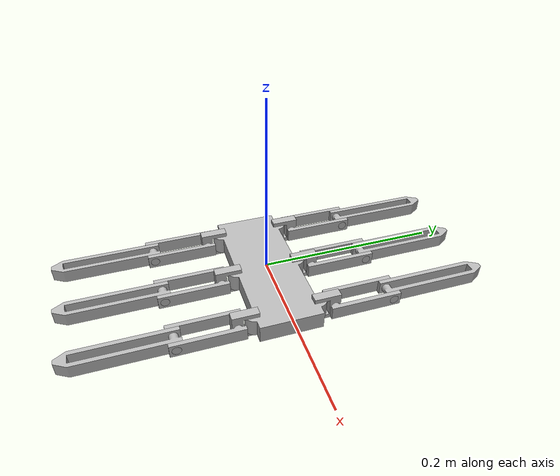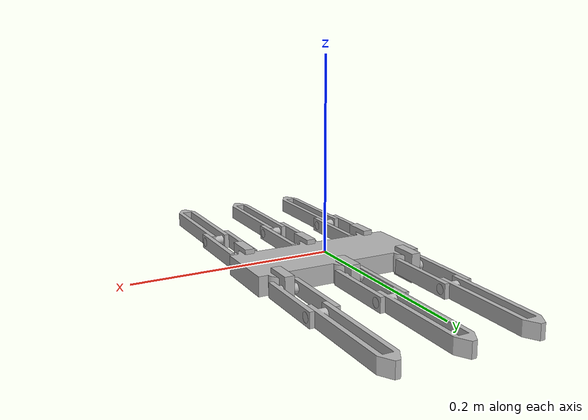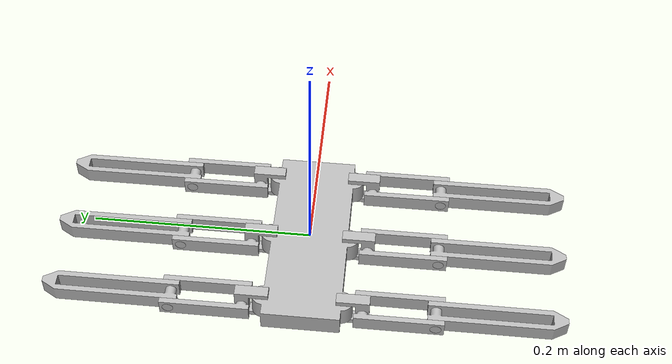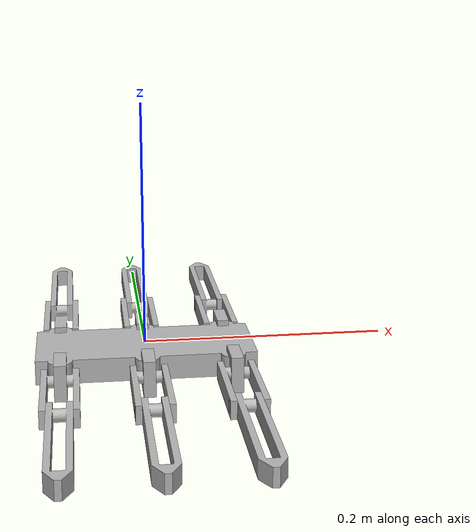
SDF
<sdf version='1.7'>
  <model name='onshape'>
    <link name='body'>
      <inertial>
        <pose>-0 -0 -0.01 0 -0 0</pose>
        <mass>0.275019</mass>
        <inertia>
          <ixx>0.000135889</ixx>
          <ixy>-1.94789e-18</ixy>
          <ixz>-1.32177e-18</ixz>
          <iyy>0.00075777</iyy>
          <iyz>-1.40515e-18</iyz>
          <izz>0.000875325</izz>
        </inertia>
      </inertial>
      <collision name='body_collision'>
        <pose>-0 0 -0.02 -0 -0 -1.5708</pose>
        <geometry>
          <mesh>
            <scale>1 1 1</scale>
            <uri>package://models/robot/meshes/body.stl</uri>
          </mesh>
        </geometry>
      </collision>
      <visual name='body_visual'>
        <pose>-0 0 -0.02 -0 -0 -1.5708</pose>
        <geometry>
          <mesh>
            <scale>1 1 1</scale>
            <uri>package://models/robot/meshes/body.stl</uri>
          </mesh>
        </geometry>
      </visual>
    </link>
    <joint name='leg1_coxa' type='revolute'>
      <pose relative_to='body'>-0.07 -0.035 -0.01 -3.14159 -0 1.5708</pose>
      <parent>body</parent>
      <child>coxa</child>
      <axis>
        <xyz>0 0 1</xyz>
        <limit>
          <lower>-0.698132</lower>
          <upper>0.698132</upper>
          <effort>1</effort>
          <velocity>20</velocity>
        </limit>
        <dynamics>
          <spring_reference>0</spring_reference>
          <spring_stiffness>0</spring_stiffness>
        </dynamics>
      </axis>
    </joint>
    <link name='coxa'>
      <pose relative_to='leg1_coxa'>0 0 0 0 -0 0</pose>
      <inertial>
        <pose>-0.009888 0 -0 0 -0 0</pose>
        <mass>0.00661224</mass>
        <inertia>
          <ixx>6.88945e-07</ixx>
          <ixy>1.36618e-38</ixy>
          <ixz>1.0027e-39</ixz>
          <iyy>1.21666e-06</iyy>
          <iyz>-3.78086e-37</iyz>
          <izz>6.31033e-07</izz>
        </inertia>
      </inertial>
      <collision name='coxa_collision'>
        <pose>-0 0 0.01 3.14159 0 -0</pose>
        <geometry>
          <mesh>
            <scale>1 1 1</scale>
            <uri>package://models/robot/meshes/coxa.stl</uri>
          </mesh>
        </geometry>
      </collision>
      <visual name='coxa_visual'>
        <pose>-0 0 0.01 3.14159 0 -0</pose>
        <geometry>
          <mesh>
            <scale>1 1 1</scale>
            <uri>package://models/robot/meshes/coxa.stl</uri>
          </mesh>
        </geometry>
      </visual>
    </link>
    <joint name='leg1_femur' type='revolute'>
      <pose relative_to='coxa'>-0.01875 0 0 -1.5708 0 0</pose>
      <parent>coxa</parent>
      <child>femur</child>
      <axis>
        <xyz>0 0 1</xyz>
        <limit>
          <lower>-1.5708</lower>
          <upper>1.5708</upper>
          <effort>1</effort>
          <velocity>20</velocity>
        </limit>
        <dynamics>
          <spring_reference>0</spring_reference>
          <spring_stiffness>0</spring_stiffness>
        </dynamics>
      </axis>
    </joint>
    <link name='femur'>
      <pose relative_to='leg1_femur'>0 0 0 0 -0 0</pose>
      <inertial>
        <pose>-0.026511 0 -0 0 -0 0</pose>
        <mass>0.0134502</mass>
        <inertia>
          <ixx>2.16493e-06</ixx>
          <ixy>9.99477e-36</ixy>
          <ixz>-6.83902e-37</ixz>
          <iyy>9.05125e-06</iyy>
          <iyz>-1.63467e-36</iyz>
          <izz>7.37005e-06</izz>
        </inertia>
      </inertial>
      <collision name='femur_collision'>
        <pose>0 0 0.01 1.5708 0 0</pose>
        <geometry>
          <mesh>
            <scale>1 1 1</scale>
            <uri>package://models/robot/meshes/femur.stl</uri>
          </mesh>
        </geometry>
      </collision>
      <visual name='femur_visual'>
        <pose>0 0 0.01 1.5708 0 0</pose>
        <geometry>
          <mesh>
            <scale>1 1 1</scale>
            <uri>package://models/robot/meshes/femur.stl</uri>
          </mesh>
        </geometry>
      </visual>
    </link>
    <joint name='leg1_tibia' type='revolute'>
      <pose relative_to='femur'>-0.065 -0 -0.015 3.14159 0 -0</pose>
      <parent>femur</parent>
      <child>tibia</child>
      <axis>
        <xyz>0 0 1</xyz>
        <limit>
          <lower>-2.61799</lower>
          <upper>2.61799</upper>
          <effort>1</effort>
          <velocity>20</velocity>
        </limit>
        <dynamics>
          <spring_reference>0</spring_reference>
          <spring_stiffness>0</spring_stiffness>
        </dynamics>
      </axis>
    </joint>
    <link name='tibia'>
      <pose relative_to='leg1_tibia'>0 0 0 0 -0 0</pose>
      <inertial>
        <pose>-0.053082 -0 -0.015 0 -0 0</pose>
        <mass>0.0224269</mass>
        <inertia>
          <ixx>1.73516e-06</ixx>
          <ixy>6.08347e-36</ixy>
          <ixz>7.0079e-38</ixz>
          <iyy>3.40424e-05</iyy>
          <iyz>3.54034e-39</iyz>
          <izz>3.31069e-05</izz>
        </inertia>
      </inertial>
      <collision name='tibia_collision'>
        <pose>0 0 -0.015 -1.5708 0 -0</pose>
        <geometry>
          <mesh>
            <scale>1 1 1</scale>
            <uri>package://models/robot/meshes/tibia.stl</uri>
          </mesh>
        </geometry>
      </collision>
      <visual name='tibia_visual'>
        <pose>0 0 -0.015 -1.5708 0 -0</pose>
        <geometry>
          <mesh>
            <scale>1 1 1</scale>
            <uri>package://models/robot/meshes/tibia.stl</uri>
          </mesh>
        </geometry>
      </visual>
    </link>
    <joint name='leg2_coxa' type='revolute'>
      <pose relative_to='body'>0 -0.035 -0.01 3.14159 -0 1.5708</pose>
      <parent>body</parent>
      <child>coxa_2</child>
      <axis>
        <xyz>0 0 1</xyz>
        <limit>
          <lower>-0.698132</lower>
          <upper>0.698132</upper>
          <effort>1</effort>
          <velocity>20</velocity>
        </limit>
        <dynamics>
          <spring_reference>0</spring_reference>
          <spring_stiffness>0</spring_stiffness>
        </dynamics>
      </axis>
    </joint>
    <link name='coxa_2'>
      <pose relative_to='leg2_coxa'>0 0 0 0 -0 0</pose>
      <inertial>
        <pose>-0.009888 0 -0 0 -0 0</pose>
        <mass>0.00661224</mass>
        <inertia>
          <ixx>6.88945e-07</ixx>
          <ixy>-6.31328e-38</ixy>
          <ixz>-1.03262e-37</ixz>
          <iyy>1.21666e-06</iyy>
          <iyz>-5.07016e-37</iyz>
          <izz>6.31033e-07</izz>
        </inertia>
      </inertial>
      <collision name='coxa_2_collision'>
        <pose>0 0 0.01 3.14159 0 0</pose>
        <geometry>
          <mesh>
            <scale>1 1 1</scale>
            <uri>package://models/robot/meshes/coxa.stl</uri>
          </mesh>
        </geometry>
      </collision>
      <visual name='coxa_2_visual'>
        <pose>0 0 0.01 3.14159 0 0</pose>
        <geometry>
          <mesh>
            <scale>1 1 1</scale>
            <uri>package://models/robot/meshes/coxa.stl</uri>
          </mesh>
        </geometry>
      </visual>
    </link>
    <joint name='leg2_femur' type='revolute'>
      <pose relative_to='coxa_2'>-0.01875 0 0 -1.5708 0 0</pose>
      <parent>coxa_2</parent>
      <child>femur_2</child>
      <axis>
        <xyz>0 0 1</xyz>
        <limit>
          <lower>-1.5708</lower>
          <upper>1.5708</upper>
          <effort>1</effort>
          <velocity>20</velocity>
        </limit>
        <dynamics>
          <spring_reference>0</spring_reference>
          <spring_stiffness>0</spring_stiffness>
        </dynamics>
      </axis>
    </joint>
    <link name='femur_2'>
      <pose relative_to='leg2_femur'>0 0 0 0 -0 0</pose>
      <inertial>
        <pose>-0.026511 0 -0 0 -0 0</pose>
        <mass>0.0134502</mass>
        <inertia>
          <ixx>2.16493e-06</ixx>
          <ixy>8.83431e-36</ixy>
          <ixz>-1.30397e-36</ixz>
          <iyy>9.05125e-06</iyy>
          <iyz>2.16668e-36</iyz>
          <izz>7.37005e-06</izz>
        </inertia>
      </inertial>
      <collision name='femur_2_collision'>
        <pose>0 0 0.01 1.5708 0 -0</pose>
        <geometry>
          <mesh>
            <scale>1 1 1</scale>
            <uri>package://models/robot/meshes/femur.stl</uri>
          </mesh>
        </geometry>
      </collision>
      <visual name='femur_2_visual'>
        <pose>0 0 0.01 1.5708 0 -0</pose>
        <geometry>
          <mesh>
            <scale>1 1 1</scale>
            <uri>package://models/robot/meshes/femur.stl</uri>
          </mesh>
        </geometry>
      </visual>
    </link>
    <joint name='leg2_tibia' type='revolute'>
      <pose relative_to='femur_2'>-0.065 -0 -0.015 3.14159 0 0</pose>
      <parent>femur_2</parent>
      <child>tibia_2</child>
      <axis>
        <xyz>0 0 1</xyz>
        <limit>
          <lower>-2.61799</lower>
          <upper>2.61799</upper>
          <effort>1</effort>
          <velocity>20</velocity>
        </limit>
        <dynamics>
          <spring_reference>0</spring_reference>
          <spring_stiffness>0</spring_stiffness>
        </dynamics>
      </axis>
    </joint>
    <link name='tibia_2'>
      <pose relative_to='leg2_tibia'>0 0 0 0 -0 0</pose>
      <inertial>
        <pose>-0.053082 -0 -0.015 0 -0 0</pose>
        <mass>0.0224269</mass>
        <inertia>
          <ixx>1.73516e-06</ixx>
          <ixy>-2.01166e-35</ixy>
          <ixz>-5.97056e-37</ixz>
          <iyy>3.40424e-05</iyy>
          <iyz>-3.61737e-36</iyz>
          <izz>3.31069e-05</izz>
        </inertia>
      </inertial>
      <collision name='tibia_2_collision'>
        <pose>0 0 -0.015 -1.5708 0 0</pose>
        <geometry>
          <mesh>
            <scale>1 1 1</scale>
            <uri>package://models/robot/meshes/tibia.stl</uri>
          </mesh>
        </geometry>
      </collision>
      <visual name='tibia_2_visual'>
        <pose>0 0 -0.015 -1.5708 0 0</pose>
        <geometry>
          <mesh>
            <scale>1 1 1</scale>
            <uri>package://models/robot/meshes/tibia.stl</uri>
          </mesh>
        </geometry>
      </visual>
    </link>
    <joint name='leg3_coxa' type='revolute'>
      <pose relative_to='body'>0.07 -0.035 -0.01 3.14159 -0 1.5708</pose>
      <parent>body</parent>
      <child>coxa_3</child>
      <axis>
        <xyz>0 0 1</xyz>
        <limit>
          <lower>-0.698132</lower>
          <upper>0.698132</upper>
          <effort>1</effort>
          <velocity>20</velocity>
        </limit>
        <dynamics>
          <spring_reference>0</spring_reference>
          <spring_stiffness>0</spring_stiffness>
        </dynamics>
      </axis>
    </joint>
    <link name='coxa_3'>
      <pose relative_to='leg3_coxa'>0 0 0 0 -0 0</pose>
      <inertial>
        <pose>-0.009888 0 -0 0 -0 0</pose>
        <mass>0.00661224</mass>
        <inertia>
          <ixx>6.88945e-07</ixx>
          <ixy>-8.63336e-37</ixy>
          <ixz>0</ixz>
          <iyy>1.21666e-06</iyy>
          <iyz>0</iyz>
          <izz>6.31033e-07</izz>
        </inertia>
      </inertial>
      <collision name='coxa_3_collision'>
        <pose>0 0 0.01 3.14159 -0 -0</pose>
        <geometry>
          <mesh>
            <scale>1 1 1</scale>
            <uri>package://models/robot/meshes/coxa.stl</uri>
          </mesh>
        </geometry>
      </collision>
      <visual name='coxa_3_visual'>
        <pose>0 0 0.01 3.14159 -0 -0</pose>
        <geometry>
          <mesh>
            <scale>1 1 1</scale>
            <uri>package://models/robot/meshes/coxa.stl</uri>
          </mesh>
        </geometry>
      </visual>
    </link>
    <joint name='leg3_femur' type='revolute'>
      <pose relative_to='coxa_3'>-0.01875 0 0 -1.5708 -0 0</pose>
      <parent>coxa_3</parent>
      <child>femur_3</child>
      <axis>
        <xyz>0 0 1</xyz>
        <limit>
          <lower>-1.5708</lower>
          <upper>1.5708</upper>
          <effort>1</effort>
          <velocity>20</velocity>
        </limit>
        <dynamics>
          <spring_reference>0</spring_reference>
          <spring_stiffness>0</spring_stiffness>
        </dynamics>
      </axis>
    </joint>
    <link name='femur_3'>
      <pose relative_to='leg3_femur'>0 0 0 0 -0 0</pose>
      <inertial>
        <pose>-0.026511 0 -0 0 -0 0</pose>
        <mass>0.0134502</mass>
        <inertia>
          <ixx>2.16493e-06</ixx>
          <ixy>-2.74598e-36</ixy>
          <ixz>-3.63034e-36</ixz>
          <iyy>9.05125e-06</iyy>
          <iyz>1.87796e-38</iyz>
          <izz>7.37005e-06</izz>
        </inertia>
      </inertial>
      <collision name='femur_3_collision'>
        <pose>0 0 0.01 1.5708 -0 -0</pose>
        <geometry>
          <mesh>
            <scale>1 1 1</scale>
            <uri>package://models/robot/meshes/femur.stl</uri>
          </mesh>
        </geometry>
      </collision>
      <visual name='femur_3_visual'>
        <pose>0 0 0.01 1.5708 -0 -0</pose>
        <geometry>
          <mesh>
            <scale>1 1 1</scale>
            <uri>package://models/robot/meshes/femur.stl</uri>
          </mesh>
        </geometry>
      </visual>
    </link>
    <joint name='leg3_tibia' type='revolute'>
      <pose relative_to='femur_3'>-0.065 0 -0.015 -3.14159 0 0</pose>
      <parent>femur_3</parent>
      <child>tibia_3</child>
      <axis>
        <xyz>0 0 1</xyz>
        <limit>
          <lower>-2.61799</lower>
          <upper>2.61799</upper>
          <effort>1</effort>
          <velocity>20</velocity>
        </limit>
        <dynamics>
          <spring_reference>0</spring_reference>
          <spring_stiffness>0</spring_stiffness>
        </dynamics>
      </axis>
    </joint>
    <link name='tibia_3'>
      <pose relative_to='leg3_tibia'>0 0 0 0 -0 0</pose>
      <inertial>
        <pose>-0.053082 0 -0.015 0 -0 0</pose>
        <mass>0.0224269</mass>
        <inertia>
          <ixx>1.73516e-06</ixx>
          <ixy>-6.65003e-36</ixy>
          <ixz>1.13017e-35</ixz>
          <iyy>3.40424e-05</iyy>
          <iyz>-5.28622e-35</iyz>
          <izz>3.31069e-05</izz>
        </inertia>
      </inertial>
      <collision name='tibia_3_collision'>
        <pose>0 0 -0.015 -1.5708 0 0</pose>
        <geometry>
          <mesh>
            <scale>1 1 1</scale>
            <uri>package://models/robot/meshes/tibia.stl</uri>
          </mesh>
        </geometry>
      </collision>
      <visual name='tibia_3_visual'>
        <pose>0 0 -0.015 -1.5708 0 0</pose>
        <geometry>
          <mesh>
            <scale>1 1 1</scale>
            <uri>package://models/robot/meshes/tibia.stl</uri>
          </mesh>
        </geometry>
      </visual>
    </link>
    <joint name='leg4_coxa' type='revolute'>
      <pose relative_to='body'>0.07 0.035 -0.01 -3.14159 0 -1.5708</pose>
      <parent>body</parent>
      <child>coxa_4</child>
      <axis>
        <xyz>0 0 1</xyz>
        <limit>
          <lower>-0.698132</lower>
          <upper>0.698132</upper>
          <effort>1</effort>
          <velocity>20</velocity>
        </limit>
        <dynamics>
          <spring_reference>0</spring_reference>
          <spring_stiffness>0</spring_stiffness>
        </dynamics>
      </axis>
    </joint>
    <link name='coxa_4'>
      <pose relative_to='leg4_coxa'>0 0 0 0 -0 0</pose>
      <inertial>
        <pose>-0.009888 0 -0 0 -0 0</pose>
        <mass>0.00661224</mass>
        <inertia>
          <ixx>6.88945e-07</ixx>
          <ixy>5.61159e-39</ixy>
          <ixz>4.18252e-38</ixz>
          <iyy>1.21666e-06</iyy>
          <iyz>7.79585e-38</iyz>
          <izz>6.31033e-07</izz>
        </inertia>
      </inertial>
      <collision name='coxa_4_collision'>
        <pose>0 0 0.01 -3.14159 0 -0</pose>
        <geometry>
          <mesh>
            <scale>1 1 1</scale>
            <uri>package://models/robot/meshes/coxa.stl</uri>
          </mesh>
        </geometry>
      </collision>
      <visual name='coxa_4_visual'>
        <pose>0 0 0.01 -3.14159 0 -0</pose>
        <geometry>
          <mesh>
            <scale>1 1 1</scale>
            <uri>package://models/robot/meshes/coxa.stl</uri>
          </mesh>
        </geometry>
      </visual>
    </link>
    <joint name='leg4_femur' type='revolute'>
      <pose relative_to='coxa_4'>-0.01875 0 0 -1.5708 0 -0</pose>
      <parent>coxa_4</parent>
      <child>femur_4</child>
      <axis>
        <xyz>0 0 1</xyz>
        <limit>
          <lower>-1.5708</lower>
          <upper>1.5708</upper>
          <effort>1</effort>
          <velocity>20</velocity>
        </limit>
        <dynamics>
          <spring_reference>0</spring_reference>
          <spring_stiffness>0</spring_stiffness>
        </dynamics>
      </axis>
    </joint>
    <link name='femur_4'>
      <pose relative_to='leg4_femur'>0 0 0 0 -0 0</pose>
      <inertial>
        <pose>-0.026511 0 -0 0 -0 0</pose>
        <mass>0.0134502</mass>
        <inertia>
          <ixx>2.16493e-06</ixx>
          <ixy>-5.53e-37</ixy>
          <ixz>2.70767e-36</ixz>
          <iyy>9.05125e-06</iyy>
          <iyz>4.60247e-37</iyz>
          <izz>7.37005e-06</izz>
        </inertia>
      </inertial>
      <collision name='femur_4_collision'>
        <pose>0 0 0.01 1.5708 -0 -0</pose>
        <geometry>
          <mesh>
            <scale>1 1 1</scale>
            <uri>package://models/robot/meshes/femur.stl</uri>
          </mesh>
        </geometry>
      </collision>
      <visual name='femur_4_visual'>
        <pose>0 0 0.01 1.5708 -0 -0</pose>
        <geometry>
          <mesh>
            <scale>1 1 1</scale>
            <uri>package://models/robot/meshes/femur.stl</uri>
          </mesh>
        </geometry>
      </visual>
    </link>
    <joint name='leg4_tibia' type='revolute'>
      <pose relative_to='femur_4'>-0.065 0 -0.015 3.14159 -0 -0</pose>
      <parent>femur_4</parent>
      <child>tibia_4</child>
      <axis>
        <xyz>0 0 1</xyz>
        <limit>
          <lower>-2.61799</lower>
          <upper>2.61799</upper>
          <effort>1</effort>
          <velocity>20</velocity>
        </limit>
        <dynamics>
          <spring_reference>0</spring_reference>
          <spring_stiffness>0</spring_stiffness>
        </dynamics>
      </axis>
    </joint>
    <link name='tibia_4'>
      <pose relative_to='leg4_tibia'>0 0 0 0 -0 0</pose>
      <inertial>
        <pose>-0.053082 -0 -0.015 0 -0 0</pose>
        <mass>0.0224269</mass>
        <inertia>
          <ixx>1.73516e-06</ixx>
          <ixy>4.58307e-37</ixy>
          <ixz>4.98314e-36</ixz>
          <iyy>3.40424e-05</iyy>
          <iyz>3.75234e-36</iyz>
          <izz>3.31069e-05</izz>
        </inertia>
      </inertial>
      <collision name='tibia_4_collision'>
        <pose>0 -0 -0.015 -1.5708 -0 -0</pose>
        <geometry>
          <mesh>
            <scale>1 1 1</scale>
            <uri>package://models/robot/meshes/tibia.stl</uri>
          </mesh>
        </geometry>
      </collision>
      <visual name='tibia_4_visual'>
        <pose>0 -0 -0.015 -1.5708 -0 -0</pose>
        <geometry>
          <mesh>
            <scale>1 1 1</scale>
            <uri>package://models/robot/meshes/tibia.stl</uri>
          </mesh>
        </geometry>
      </visual>
    </link>
    <joint name='leg5_coxa' type='revolute'>
      <pose relative_to='body'>-0 0.035 -0.01 3.14159 -0 -1.5708</pose>
      <parent>body</parent>
      <child>coxa_5</child>
      <axis>
        <xyz>0 0 1</xyz>
        <limit>
          <lower>-0.698132</lower>
          <upper>0.698132</upper>
          <effort>1</effort>
          <velocity>20</velocity>
        </limit>
        <dynamics>
          <spring_reference>0</spring_reference>
          <spring_stiffness>0</spring_stiffness>
        </dynamics>
      </axis>
    </joint>
    <link name='coxa_5'>
      <pose relative_to='leg5_coxa'>0 0 0 0 -0 0</pose>
      <inertial>
        <pose>-0.009888 0 -0 0 -0 0</pose>
        <mass>0.00661224</mass>
        <inertia>
          <ixx>6.88945e-07</ixx>
          <ixy>-2.8165e-38</ixy>
          <ixz>2.81906e-38</ixz>
          <iyy>1.21666e-06</iyy>
          <iyz>-8.2387e-39</iyz>
          <izz>6.31033e-07</izz>
        </inertia>
      </inertial>
      <collision name='coxa_5_collision'>
        <pose>0 0 0.01 3.14159 -0 -0</pose>
        <geometry>
          <mesh>
            <scale>1 1 1</scale>
            <uri>package://models/robot/meshes/coxa.stl</uri>
          </mesh>
        </geometry>
      </collision>
      <visual name='coxa_5_visual'>
        <pose>0 0 0.01 3.14159 -0 -0</pose>
        <geometry>
          <mesh>
            <scale>1 1 1</scale>
            <uri>package://models/robot/meshes/coxa.stl</uri>
          </mesh>
        </geometry>
      </visual>
    </link>
    <joint name='leg5_femur' type='revolute'>
      <pose relative_to='coxa_5'>-0.01875 -0 0 -1.5708 0 -0</pose>
      <parent>coxa_5</parent>
      <child>femur_5</child>
      <axis>
        <xyz>0 0 1</xyz>
        <limit>
          <lower>-1.5708</lower>
          <upper>1.5708</upper>
          <effort>1</effort>
          <velocity>20</velocity>
        </limit>
        <dynamics>
          <spring_reference>0</spring_reference>
          <spring_stiffness>0</spring_stiffness>
        </dynamics>
      </axis>
    </joint>
    <link name='femur_5'>
      <pose relative_to='leg5_femur'>0 0 0 0 -0 0</pose>
      <inertial>
        <pose>-0.026511 0 -0 0 -0 0</pose>
        <mass>0.0134502</mass>
        <inertia>
          <ixx>2.16493e-06</ixx>
          <ixy>-1.51026e-36</ixy>
          <ixz>-2.10708e-37</ixz>
          <iyy>9.05125e-06</iyy>
          <iyz>-2.6767e-38</iyz>
          <izz>7.37005e-06</izz>
        </inertia>
      </inertial>
      <collision name='femur_5_collision'>
        <pose>0 0 0.01 1.5708 0 0</pose>
        <geometry>
          <mesh>
            <scale>1 1 1</scale>
            <uri>package://models/robot/meshes/femur.stl</uri>
          </mesh>
        </geometry>
      </collision>
      <visual name='femur_5_visual'>
        <pose>0 0 0.01 1.5708 0 0</pose>
        <geometry>
          <mesh>
            <scale>1 1 1</scale>
            <uri>package://models/robot/meshes/femur.stl</uri>
          </mesh>
        </geometry>
      </visual>
    </link>
    <joint name='leg5_tibia' type='revolute'>
      <pose relative_to='femur_5'>-0.065 -0 -0.015 3.14159 -0 -0</pose>
      <parent>femur_5</parent>
      <child>tibia_5</child>
      <axis>
        <xyz>0 0 1</xyz>
        <limit>
          <lower>-2.61799</lower>
          <upper>2.61799</upper>
          <effort>1</effort>
          <velocity>20</velocity>
        </limit>
        <dynamics>
          <spring_reference>0</spring_reference>
          <spring_stiffness>0</spring_stiffness>
        </dynamics>
      </axis>
    </joint>
    <link name='tibia_5'>
      <pose relative_to='leg5_tibia'>0 0 0 0 -0 0</pose>
      <inertial>
        <pose>-0.053082 -0 -0.015 0 -0 0</pose>
        <mass>0.0224269</mass>
        <inertia>
          <ixx>1.73516e-06</ixx>
          <ixy>1.73944e-34</ixy>
          <ixz>1.69405e-37</ixz>
          <iyy>3.40424e-05</iyy>
          <iyz>-1.48939e-38</iyz>
          <izz>3.31069e-05</izz>
        </inertia>
      </inertial>
      <collision name='tibia_5_collision'>
        <pose>0 0 -0.015 -1.5708 -0 -0</pose>
        <geometry>
          <mesh>
            <scale>1 1 1</scale>
            <uri>package://models/robot/meshes/tibia.stl</uri>
          </mesh>
        </geometry>
      </collision>
      <visual name='tibia_5_visual'>
        <pose>0 0 -0.015 -1.5708 -0 -0</pose>
        <geometry>
          <mesh>
            <scale>1 1 1</scale>
            <uri>package://models/robot/meshes/tibia.stl</uri>
          </mesh>
        </geometry>
      </visual>
    </link>
    <joint name='leg6_coxa' type='revolute'>
      <pose relative_to='body'>-0.07 0.035 -0.01 3.14159 -0 -1.5708</pose>
      <parent>body</parent>
      <child>coxa_6</child>
      <axis>
        <xyz>0 0 1</xyz>
        <limit>
          <lower>-0.698132</lower>
          <upper>0.698132</upper>
          <effort>1</effort>
          <velocity>20</velocity>
        </limit>
        <dynamics>
          <spring_reference>0</spring_reference>
          <spring_stiffness>0</spring_stiffness>
        </dynamics>
      </axis>
    </joint>
    <link name='coxa_6'>
      <pose relative_to='leg6_coxa'>0 0 0 0 -0 0</pose>
      <inertial>
        <pose>-0.009888 0 -0 0 -0 0</pose>
        <mass>0.00661224</mass>
        <inertia>
          <ixx>6.88945e-07</ixx>
          <ixy>-1.82957e-37</ixy>
          <ixz>-1.61556e-37</ixz>
          <iyy>1.21666e-06</iyy>
          <iyz>-3.82516e-37</iyz>
          <izz>6.31033e-07</izz>
        </inertia>
      </inertial>
      <collision name='coxa_6_collision'>
        <pose>0 0 0.01 3.14159 0 -0</pose>
        <geometry>
          <mesh>
            <scale>1 1 1</scale>
            <uri>package://models/robot/meshes/coxa.stl</uri>
          </mesh>
        </geometry>
      </collision>
      <visual name='coxa_6_visual'>
        <pose>0 0 0.01 3.14159 0 -0</pose>
        <geometry>
          <mesh>
            <scale>1 1 1</scale>
            <uri>package://models/robot/meshes/coxa.stl</uri>
          </mesh>
        </geometry>
      </visual>
    </link>
    <joint name='leg6_femur' type='revolute'>
      <pose relative_to='coxa_6'>-0.01875 0 0 -1.5708 -0 0</pose>
      <parent>coxa_6</parent>
      <child>femur_6</child>
      <axis>
        <xyz>0 0 1</xyz>
        <limit>
          <lower>-1.5708</lower>
          <upper>1.5708</upper>
          <effort>1</effort>
          <velocity>20</velocity>
        </limit>
        <dynamics>
          <spring_reference>0</spring_reference>
          <spring_stiffness>0</spring_stiffness>
        </dynamics>
      </axis>
    </joint>
    <link name='femur_6'>
      <pose relative_to='leg6_femur'>0 0 0 0 -0 0</pose>
      <inertial>
        <pose>-0.026511 0 -0 0 -0 0</pose>
        <mass>0.0134502</mass>
        <inertia>
          <ixx>2.16493e-06</ixx>
          <ixy>1.11348e-35</ixy>
          <ixz>-4.53793e-36</ixz>
          <iyy>9.05125e-06</iyy>
          <iyz>-3.03564e-36</iyz>
          <izz>7.37005e-06</izz>
        </inertia>
      </inertial>
      <collision name='femur_6_collision'>
        <pose>0 0 0.01 1.5708 0 0</pose>
        <geometry>
          <mesh>
            <scale>1 1 1</scale>
            <uri>package://models/robot/meshes/femur.stl</uri>
          </mesh>
        </geometry>
      </collision>
      <visual name='femur_6_visual'>
        <pose>0 0 0.01 1.5708 0 0</pose>
        <geometry>
          <mesh>
            <scale>1 1 1</scale>
            <uri>package://models/robot/meshes/femur.stl</uri>
          </mesh>
        </geometry>
      </visual>
    </link>
    <joint name='leg6_tibia' type='revolute'>
      <pose relative_to='femur_6'>-0.065 0 -0.015 3.14159 0 -0</pose>
      <parent>femur_6</parent>
      <child>tibia_6</child>
      <axis>
        <xyz>0 0 1</xyz>
        <limit>
          <lower>-2.61799</lower>
          <upper>2.61799</upper>
          <effort>1</effort>
          <velocity>20</velocity>
        </limit>
        <dynamics>
          <spring_reference>0</spring_reference>
          <spring_stiffness>0</spring_stiffness>
        </dynamics>
      </axis>
    </joint>
    <link name='tibia_6'>
      <pose relative_to='leg6_tibia'>0 0 0 0 -0 0</pose>
      <inertial>
        <pose>-0.053082 -0 -0.015 0 -0 0</pose>
        <mass>0.0224269</mass>
        <inertia>
          <ixx>1.73516e-06</ixx>
          <ixy>0</ixy>
          <ixz>-1.6506e-36</ixz>
          <iyy>3.40424e-05</iyy>
          <iyz>0</iyz>
          <izz>3.31069e-05</izz>
        </inertia>
      </inertial>
      <collision name='tibia_6_collision'>
        <pose>0 0 -0.015 -1.5708 0 0</pose>
        <geometry>
          <mesh>
            <scale>1 1 1</scale>
            <uri>package://models/robot/meshes/tibia.stl</uri>
          </mesh>
        </geometry>
      </collision>
      <visual name='tibia_6_visual'>
        <pose>0 0 -0.015 -1.5708 0 0</pose>
        <geometry>
          <mesh>
            <scale>1 1 1</scale>
            <uri>package://models/robot/meshes/tibia.stl</uri>
          </mesh>
        </geometry>
      </visual>
    </link>
    <plugin name='gazebo_ros_joint_state_publisher' filename='libgazebo_ros_joint_state_publisher.so'>
      <update_rate>20</update_rate>
      <joint_name>leg1_coxa</joint_name>
      <joint_name>leg1_femur</joint_name>
      <joint_name>leg1_tibia</joint_name>
      <joint_name>leg2_coxa</joint_name>
      <joint_name>leg2_femur</joint_name>
      <joint_name>leg2_tibia</joint_name>
      <joint_name>leg3_coxa</joint_name>
      <joint_name>leg3_femur</joint_name>
      <joint_name>leg3_tibia</joint_name>
      <joint_name>leg4_coxa</joint_name>
      <joint_name>leg4_femur</joint_name>
      <joint_name>leg4_tibia</joint_name>
      <joint_name>leg5_coxa</joint_name>
      <joint_name>leg5_femur</joint_name>
      <joint_name>leg5_tibia</joint_name>
      <joint_name>leg6_coxa</joint_name>
      <joint_name>leg6_femur</joint_name>
      <joint_name>leg6_tibia</joint_name>
    </plugin>
    <static>0</static>
    <plugin name='gazebo_ros_joint_pose_trajectory' filename='libgazebo_ros_joint_pose_trajectory.so'>
      <update_rate>2</update_rate>
    </plugin>
  </model>
</sdf>
